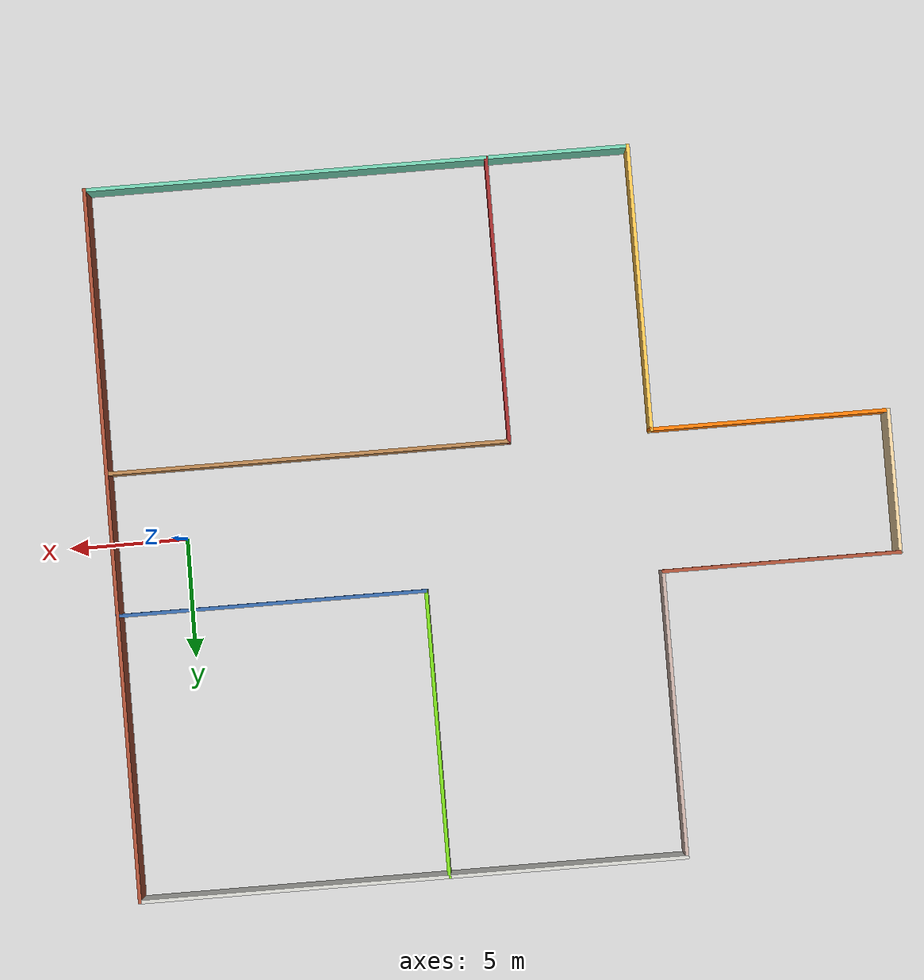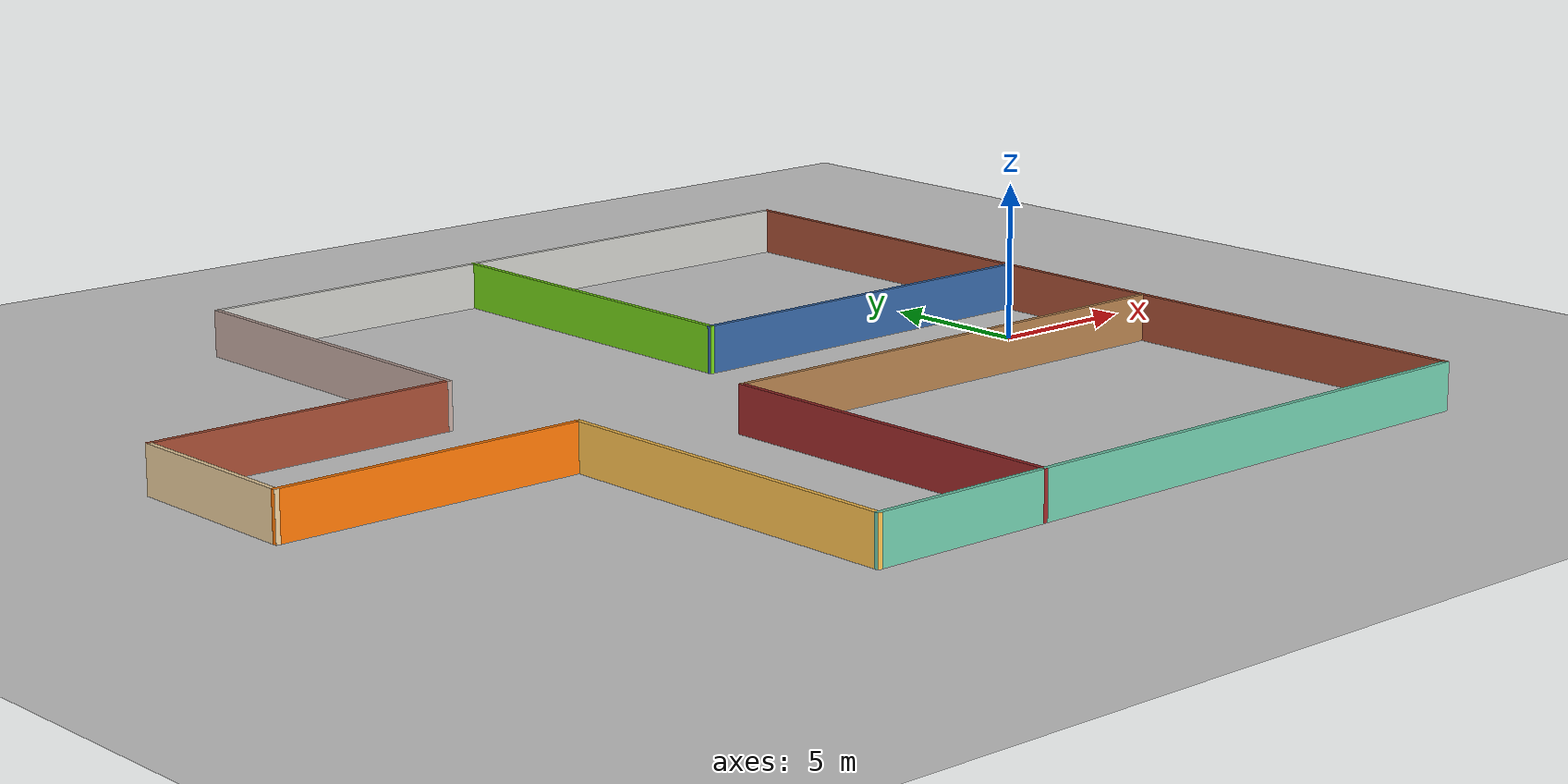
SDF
<sdf version="1.7">
 <world name="default">
  <light name="sun" type="directional">
   <pose>0 0 10 0 -0 0</pose>
   <diffuse>0.8 0.8 0.8 1</diffuse>
   <specular>0.2 0.2 0.2 1</specular>
   <attenuation>
    <range>1000</range>
    <constant>0.9</constant>
    <linear>0.01</linear>
    <quadratic>0.001</quadratic>
   </attenuation>
   <direction>-0.5 0.1 -0.9</direction>
   <spot><inner_angle>0</inner_angle><outer_angle>0</outer_angle><falloff>0</falloff></spot>
  </light>
  <model name="ground_plane">
   <static>1</static>
   <link name="link">
    <collision name="collision">
     <geometry><plane><normal>0 0 1</normal><size>100 100</size></plane></geometry>
     <surface>
      <contact><collide_bitmask>65535</collide_bitmask></contact>
      <friction><ode><mu>100</mu><mu2>50</mu2></ode></friction>
     </surface>
    </collision>
    <visual name="visual">
     <cast_shadows>0</cast_shadows>
     <geometry><plane><normal>0 0 1</normal><size>100 100</size></plane></geometry>
     <material>
      <script><uri>file://media/materials/scripts/gazebo.material</uri><name>Gazebo/Grey</name></script>
     </material>
    </visual>
   </link>
  </model>
  <gravity>0 0 -9.8</gravity>
  <magnetic_field>6e-06 2.3e-05 -4.2e-05</magnetic_field>
  <atmosphere type="adiabatic"/>
  <physics type="ode">
   <max_step_size>0.001</max_step_size>
   <real_time_factor>1</real_time_factor>
   <real_time_update_rate>1000</real_time_update_rate>
  </physics>
  <scene><ambient>0.4 0.4 0.4 1</ambient><background>0.7 0.7 0.7 1</background><shadows>1</shadows></scene>
  <spherical_coordinates>
   <surface_model>EARTH_WGS84</surface_model>
   <latitude_deg>0</latitude_deg>
   <longitude_deg>0</longitude_deg>
   <elevation>0</elevation>
   <heading_deg>0</heading_deg>
  </spherical_coordinates>
  <model name="city_walls_big">
   <pose>-13.5 0 0 0 -0 0</pose>
   <link name="Wall_0">
    <collision name="Wall_0_Collision">
     <geometry><box><size>23.15 0.15 1.5</size></box></geometry>
     <pose>0 0 0.75 0 -0 0</pose>
    </collision>
    <visual name="Wall_0_Visual">
     <pose>0 0 0.75 0 -0 0</pose>
     <geometry><box><size>23.15 0.15 1.5</size></box></geometry>
     <material>
      <script><uri>file://media/materials/scripts/gazebo.material</uri><name>Gazebo/Grey</name></script>
      <ambient>0.435294 0.796078 0.67451 1</ambient>
     </material>
     <meta><layer>0</layer></meta>
    </visual>
    <pose>5 -15 0 0 -0 3.14159</pose>
   </link>
   <link name="Wall_10">
    <collision name="Wall_10_Collision">
     <geometry><box><size>12.15 0.15 1.5</size></box></geometry>
     <pose>0 0 0.75 0 -0 0</pose>
    </collision>
    <visual name="Wall_10_Visual">
     <pose>0 0 0.75 0 -0 0</pose>
     <geometry><box><size>12.15 0.15 1.5</size></box></geometry>
     <material>
      <script><uri>file://media/materials/scripts/gazebo.material</uri><name>Gazebo/Grey</name></script>
      <ambient>0.760784 0.662745 0.627451 1</ambient>
     </material>
     <meta><layer>0</layer></meta>
    </visual>
    <pose>-6.5 9 0 0 -0 1.5708</pose>
   </link>
   <link name="Wall_12">
    <collision name="Wall_12_Collision">
     <geometry><box><size>23.15 0.15 1.5</size></box></geometry>
     <pose>0 0 0.75 0 -0 0</pose>
    </collision>
    <visual name="Wall_12_Visual">
     <pose>0 0 0.75 0 -0 0</pose>
     <geometry><box><size>23.15 0.15 1.5</size></box></geometry>
     <material>
      <script><uri>file://media/materials/scripts/gazebo.material</uri><name>Gazebo/CeilingTiled</name></script>
      <ambient>0.8 0 0 1</ambient>
     </material>
     <meta><layer>0</layer></meta>
    </visual>
    <pose>5 15 0 0 -0 0</pose>
   </link>
   <link name="Wall_14">
    <collision name="Wall_14_Collision">
     <geometry><box><size>30.15 0.15 1.5</size></box></geometry>
     <pose>0 0 0.75 0 -0 0</pose>
    </collision>
    <visual name="Wall_14_Visual">
     <pose>0 0 0.75 0 -0 0</pose>
     <geometry><box><size>30.15 0.15 1.5</size></box></geometry>
     <material>
      <script><uri>file://media/materials/scripts/gazebo.material</uri><name>Gazebo/Bricks</name></script>
      <ambient>0.988235 0.913725 0.309804 1</ambient>
     </material>
     <meta><layer>0</layer></meta>
    </visual>
    <pose>16.5 0 0 0 -0 -1.5708</pose>
   </link>
   <link name="Wall_16">
    <collision name="Wall_16_Collision">
     <geometry><box><size>12.15 0.15 1.5</size></box></geometry>
     <pose>0 0 0.75 0 -0 0</pose>
    </collision>
    <visual name="Wall_16_Visual">
     <pose>0 0 0.75 0 -0 0</pose>
     <geometry><box><size>12.15 0.15 1.5</size></box></geometry>
     <material>
      <script><uri>file://media/materials/scripts/gazebo.material</uri><name>Gazebo/Grey</name></script>
      <ambient>0.615686 0.160784 0.160784 1</ambient>
     </material>
     <meta><layer>0</layer></meta>
    </visual>
    <pose>-0.5 -9 0 0 -0 1.5708</pose>
   </link>
   <link name="Wall_18">
    <collision name="Wall_18_Collision">
     <geometry><box><size>17.15 0.15 1.5</size></box></geometry>
     <pose>0 0 0.75 0 -0 0</pose>
    </collision>
    <visual name="Wall_18_Visual">
     <pose>0 0 0.75 0 -0 0</pose>
     <geometry><box><size>17.15 0.15 1.5</size></box></geometry>
     <material>
      <script><uri>file://media/materials/scripts/gazebo.material</uri><name>Gazebo/Wood</name></script>
      <ambient>1 1 1 1</ambient>
     </material>
     <meta><layer>0</layer></meta>
    </visual>
    <pose>8 -3 0 0 -0 0</pose>
   </link>
   <link name="Wall_2">
    <collision name="Wall_2_Collision">
     <geometry><box><size>12.15 0.15 1.5</size></box></geometry>
     <pose>0 0 0.75 0 -0 0</pose>
    </collision>
    <visual name="Wall_2_Visual">
     <pose>0 0 0.75 0 -0 0</pose>
     <geometry><box><size>12.15 0.15 1.5</size></box></geometry>
     <material>
      <script><uri>file://media/materials/scripts/gazebo.material</uri><name>Gazebo/Grey</name></script>
      <ambient>1 0.764706 0.305882 1</ambient>
     </material>
     <meta><layer>0</layer></meta>
    </visual>
    <pose>-6.5 -9 0 0 -0 1.5708</pose>
   </link>
   <link name="Wall_20">
    <collision name="Wall_20_Collision">
     <geometry><box><size>13.15 0.15 1.5</size></box></geometry>
     <pose>0 0 0.75 0 -0 0</pose>
    </collision>
    <visual name="Wall_20_Visual">
     <pose>0 0 0.75 0 -0 0</pose>
     <geometry><box><size>13.15 0.15 1.5</size></box></geometry>
     <material>
      <script><uri>file://media/materials/scripts/gazebo.material</uri><name>Gazebo/Grey</name></script>
      <ambient>0.203922 0.396078 0.643137 1</ambient>
     </material>
     <meta><layer>0</layer></meta>
    </visual>
    <pose>10 3 0 0 -0 3.14159</pose>
   </link>
   <link name="Wall_22">
    <collision name="Wall_22_Collision">
     <geometry><box><size>12.15 0.15 1.5</size></box></geometry>
     <pose>0 0 0.75 0 -0 0</pose>
    </collision>
    <visual name="Wall_22_Visual">
     <pose>0 0 0.75 0 -0 0</pose>
     <geometry><box><size>12.15 0.15 1.5</size></box></geometry>
     <material>
      <script><uri>file://media/materials/scripts/gazebo.material</uri><name>Gazebo/Grey</name></script>
      <ambient>0.45098 0.823529 0.0862745 1</ambient>
     </material>
     <meta><layer>0</layer></meta>
    </visual>
    <pose>3.5 9 0 0 -0 1.5708</pose>
   </link>
   <link name="Wall_4">
    <collision name="Wall_4_Collision">
     <geometry><box><size>10.15 0.15 1.5</size></box></geometry>
     <pose>0 0 0.75 0 -0 0</pose>
    </collision>
    <visual name="Wall_4_Visual">
     <pose>0 0 0.75 0 -0 0</pose>
     <geometry><box><size>10.15 0.15 1.5</size></box></geometry>
     <material>
      <script><uri>file://media/materials/scripts/gazebo.material</uri><name>Gazebo/Grey</name></script>
      <ambient>0.996078 0.47451 0.0196078 1</ambient>
     </material>
     <meta><layer>0</layer></meta>
    </visual>
    <pose>-11.5 -3 0 0 -0 3.14159</pose>
   </link>
   <link name="Wall_6">
    <collision name="Wall_6_Collision">
     <geometry><box><size>6.15 0.15 1.5</size></box></geometry>
     <pose>0 0 0.75 0 -0 0</pose>
    </collision>
    <visual name="Wall_6_Visual">
     <pose>0 0 0.75 0 -0 0</pose>
     <geometry><box><size>6.15 0.15 1.5</size></box></geometry>
     <material>
      <script><uri>file://media/materials/scripts/gazebo.material</uri><name>Gazebo/Grey</name></script>
      <ambient>0.921569 0.807843 0.615686 1</ambient>
     </material>
     <meta><layer>0</layer></meta>
    </visual>
    <pose>-16.5 0 0 0 -0 1.5708</pose>
   </link>
   <link name="Wall_8">
    <collision name="Wall_8_Collision">
     <geometry><box><size>10.15 0.15 1.5</size></box></geometry>
     <pose>0 0 0.75 0 -0 0</pose>
    </collision>
    <visual name="Wall_8_Visual">
     <pose>0 0 0.75 0 -0 0</pose>
     <geometry><box><size>10.15 0.15 1.5</size></box></geometry>
     <material>
      <script><uri>file://media/materials/scripts/gazebo.material</uri><name>Gazebo/Bricks</name></script>
      <ambient>1 1 1 1</ambient>
     </material>
     <meta><layer>0</layer></meta>
    </visual>
    <pose>-11.5 3 0 0 -0 0</pose>
   </link>
   <static>1</static>
  </model>
 </world>
</sdf>
